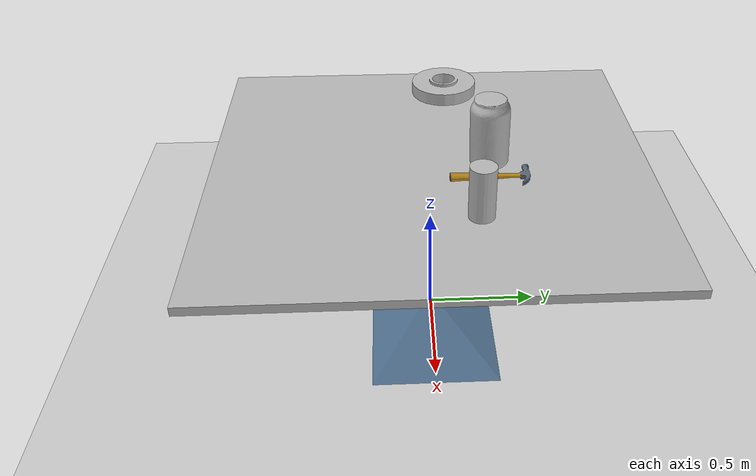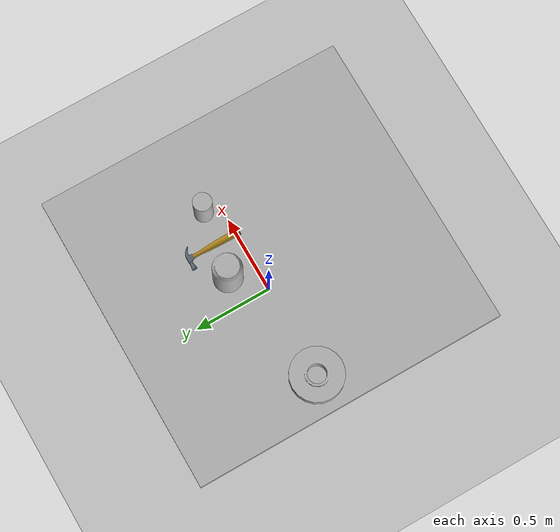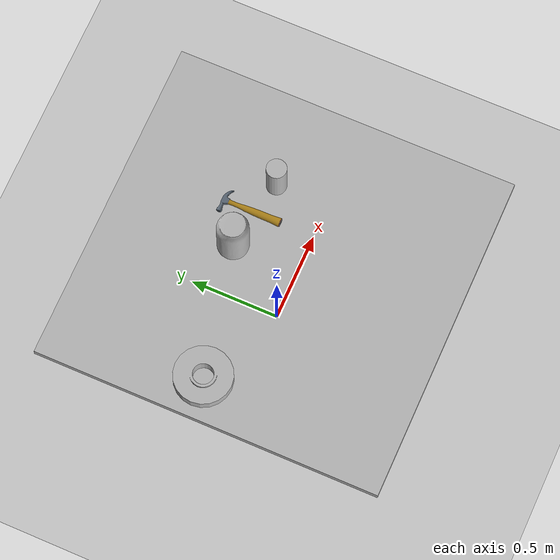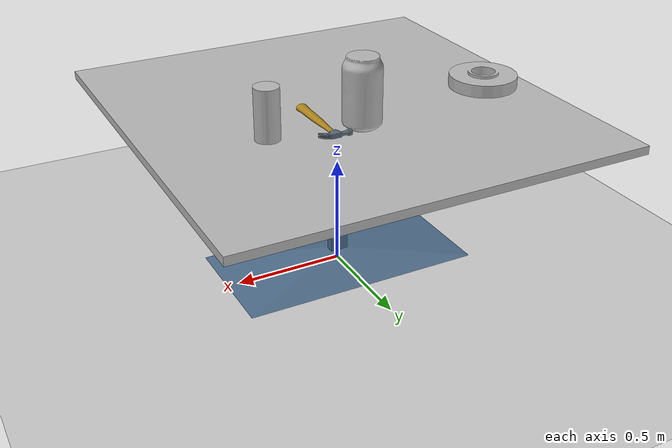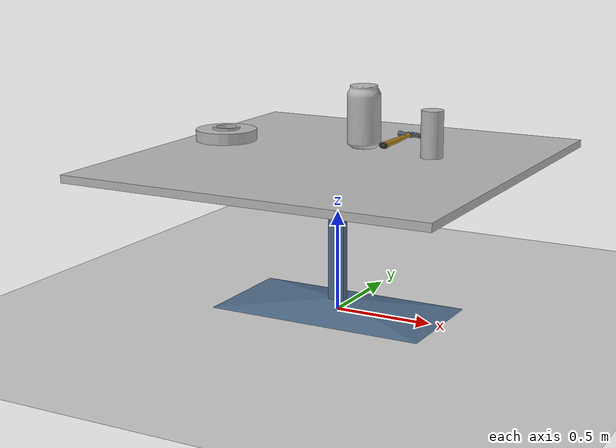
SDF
<sdf version="1.10">
 <world name="default">
  <gravity>0 0 -9.8000000000000007</gravity>
  <magnetic_field>6.0000000000000002e-06 2.3e-05 -4.1999999999999998e-05</magnetic_field>
  <atmosphere type="adiabatic"/>
  <physics name="default_physics" default="false" type="ode">
   <max_step_size>0.001</max_step_size>
   <real_time_factor>1</real_time_factor>
   <real_time_update_rate>1000</real_time_update_rate>
  </physics>
  <scene>
   <ambient>0.400000006 0.400000006 0.400000006 1</ambient>
   <background>0.699999988 0.699999988 0.699999988 1</background>
   <shadows>true</shadows>
  </scene>
  <spherical_coordinates>
   <surface_model>EARTH_WGS84</surface_model>
   <latitude_deg>0</latitude_deg>
   <longitude_deg>0</longitude_deg>
   <elevation>0</elevation>
   <heading_deg>0</heading_deg>
  </spherical_coordinates>
  <model name="ground_plane">
   <static>true</static>
   <link name="link">
    <collision name="collision">
     <geometry><plane><normal>0 0 1</normal><size>100 100</size></plane></geometry>
     <surface><friction><ode><mu>100</mu><mu2>50</mu2></ode></friction></surface>
    </collision>
    <visual name="visual">
     <cast_shadows>false</cast_shadows>
     <geometry><plane><normal>0 0 1</normal><size>100 100</size></plane></geometry>
     <material>
      <script><uri>file://media/materials/scripts/gazebo.material</uri><name>Gazebo/Grey</name></script>
     </material>
    </visual>
    <inertial>
     <mass>1</mass>
     <inertia><ixx>1</ixx><ixy>0</ixy><ixz>0</ixz><iyy>1</iyy><iyz>0</iyz><izz>1</izz></inertia>
    </inertial>
   </link>
  </model>
  <model name="beer">
   <link name="link">
    <pose>0 0 0.115 0 0 0</pose>
    <inertial>
     <mass>0.39000000000000001</mass>
     <inertia>
      <ixx>0.00058</ixx>
      <ixy>0</ixy>
      <ixz>0</ixz>
      <iyy>0.00058</iyy>
      <iyz>0</iyz>
      <izz>0.00019000000000000001</izz>
     </inertia>
    </inertial>
    <collision name="collision">
     <geometry><cylinder><radius>0.055</radius><length>0.23000000000000001</length></cylinder></geometry>
    </collision>
    <visual name="visual">
     <geometry><cylinder><radius>0.055</radius><length>0.23000000000000001</length></cylinder></geometry>
     <material>
      <script>
       <uri>model://beer/materials/scripts</uri>
       <uri>model://beer/materials/textures</uri>
       <name>Beer/Diffuse</name>
      </script>
     </material>
    </visual>
   </link>
   <pose>0.41439700000000002 0.18340000000000001 0.77498999999999996 9.9999999999999974e-07 -2.7000000000000006e-05 -0.0018949999999999998</pose>
   <static>false</static>
  </model>
  <model name="disk_part">
   <link name="link">
    <inertial>
     <pose>0 0 0.02895 0 0 0</pose>
     <mass>0.5</mass>
     <inertia>
      <ixx>0.0032121799999999998</ixx>
      <ixy>0</ixy>
      <ixz>0</ixz>
      <iyy>0.0032121799999999998</iyy>
      <iyz>0</iyz>
      <izz>0.0061449900000000003</izz>
     </inertia>
    </inertial>
    <collision name="collision">
     <pose>0 0 0.02895 0 0 0</pose>
     <geometry><cylinder><length>0.0579</length><radius>0.15678</radius></cylinder></geometry>
    </collision>
    <visual name="visual">
     <geometry><mesh><uri>model://disk_part/meshes/disk.dae</uri><scale>1 1 1</scale></mesh></geometry>
     <material>
      <script>
       <uri>model://arm_part/materials/scripts</uri>
       <uri>model://arm_part/materials/textures</uri>
       <name>ArmPart/Diffuse</name>
      </script>
     </material>
    </visual>
   </link>
   <pose>-0.69997299999999996 0.100026 0.77499399999999996 -2.6999999999999999e-05 -2.4000000000000001e-05 -2.8000000000000003e-05</pose>
   <static>false</static>
  </model>
  <model name="hammer">
   <static>true</static>
   <link name="link">
    <collision name="collision">
     <geometry><mesh><uri>model://hammer/meshes/hammer.dae</uri><scale>1 1 1</scale></mesh></geometry>
    </collision>
    <visual name="visual">
     <geometry><mesh><uri>model://hammer/meshes/hammer.dae</uri><scale>1 1 1</scale></mesh></geometry>
    </visual>
    <inertial>
     <mass>1</mass>
     <inertia><ixx>1</ixx><ixy>0</ixy><ixz>0</ixz><iyy>1</iyy><iyz>0</iyz><izz>1</izz></inertia>
    </inertial>
   </link>
   <pose>0.20000000000000001 0.30674000000000001 0.83393499999999998 0 0 0</pose>
  </model>
  <model name="cafe_table">
   <static>true</static>
   <link name="link">
    <collision name="surface">
     <pose>0 0 0.755 0 0 0</pose>
     <geometry><box><size>1.913 0.91300000000000003 0.040000000000000001</size></box></geometry>
    </collision>
    <collision name="column">
     <pose>0 0 0.37 0 0 0</pose>
     <geometry><box><size>0.042000000000000003 0.042000000000000003 0.73999999999999999</size></box></geometry>
    </collision>
    <collision name="base">
     <pose>0 0 0.02 0 0 0</pose>
     <geometry><box><size>0.56000000000000005 0.56000000000000005 0.040000000000000001</size></box></geometry>
    </collision>
    <visual name="visual">
     <geometry><mesh><uri>model://cafe_table/meshes/cafe_table.dae</uri><scale>2 1 1</scale></mesh></geometry>
    </visual>
    <inertial>
     <mass>1</mass>
     <inertia><ixx>1</ixx><ixy>0</ixy><ixz>0</ixz><iyy>1</iyy><iyz>0</iyz><izz>1</izz></inertia>
    </inertial>
   </link>
  </model>
  <model name="soda_can">
   <link name="link">
    <inertial>
     <pose>-0.01 -0.012 0.14999999999999999 0 0 0</pose>
     <mass>0.39000000000000001</mass>
     <inertia>
      <ixx>0.00058</ixx>
      <ixy>0</ixy>
      <ixz>0</ixz>
      <iyy>0.00058</iyy>
      <iyz>0</iyz>
      <izz>0.00019000000000000001</izz>
     </inertia>
    </inertial>
    <collision name="collision">
     <pose>0 0 -0.46000000000000002 0 0 0</pose>
     <geometry><mesh><uri>model://soda_can/meshes/soda_can.dae</uri></mesh></geometry>
     <surface>
      <friction><ode><mu>1</mu><mu2>1</mu2></ode></friction>
      <contact>
       <ode><kp>10000000</kp><kd>1</kd><min_depth>0.001</min_depth><max_vel>0.10000000000000001</max_vel></ode>
      </contact>
     </surface>
    </collision>
    <visual name="visual">
     <pose>0 0 -0.46000000000000002 0 0 0</pose>
     <geometry><mesh><uri>model://soda_can/meshes/soda_can.dae</uri></mesh></geometry>
    </visual>
   </link>
   <pose>0.016906999999999998 0.27059899999999998 0.77068300000000001 0.0012319999999999998 -0.0099040000000000013 0.65085099999999985</pose>
   <static>false</static>
  </model>
  <light name="sun" type="directional">
   <pose>0 0 10 0 0 0</pose>
   <intensity>1</intensity>
   <direction>-0.5 0.10000000000000001 -0.90000000000000002</direction>
   <diffuse>0.800000012 0.800000012 0.800000012 1</diffuse>
   <specular>0.200000003 0.200000003 0.200000003 1</specular>
   <attenuation>
    <range>1000</range>
    <linear>0.0099999997764825821</linear>
    <constant>0.89999997615814209</constant>
    <quadratic>0.0010000000474974513</quadratic>
   </attenuation>
   <spot><inner_angle>0</inner_angle><outer_angle>0</outer_angle><falloff>0</falloff></spot>
  </light>
 </world>
</sdf>
